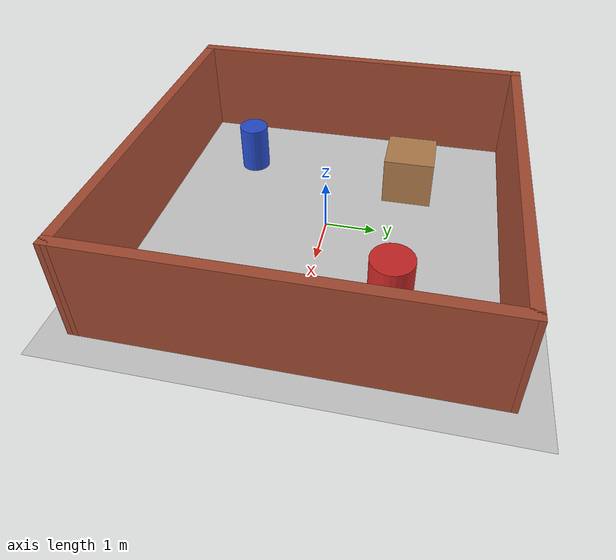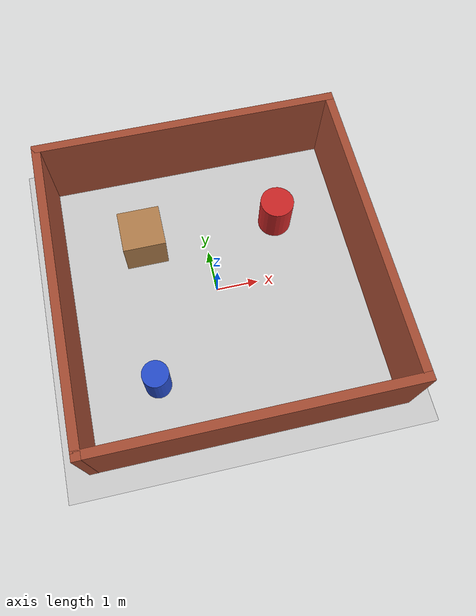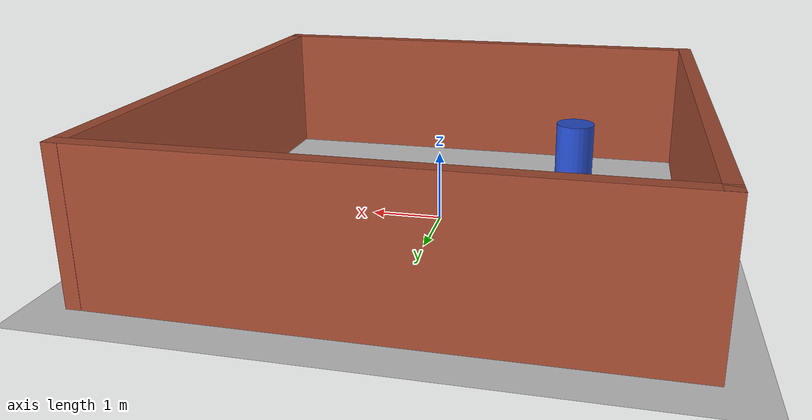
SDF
<?xml version="1.0" ?>
<sdf version="1.5">
  <world name="default">

    <scene>
      <ambient>0.4 0.4 0.4 1.0</ambient>
      <background>0.3 0.3 0.3 1.0</background>
      <shadows>true</shadows>
    </scene>

    <plugin name="gazebo_ros_state" filename="libgazebo_ros_state.so">
      <ros>
        <namespace>/</namespace>
      </ros>
      <update_rate>30.0</update_rate>
    </plugin>

    <light type="directional" name="sun_studio">
      <cast_shadows>true</cast_shadows>
      <pose>0 0 10 0 0 0</pose>
      <diffuse>0.6 0.6 0.6 1</diffuse>
      <specular>0.1 0.1 0.1 1</specular>
      <attenuation>
        <range>1000</range>
        <constant>0.9</constant>
        <linear>0.01</linear>
        <quadratic>0.001</quadratic>
      </attenuation>
      <direction>-0.5 0.5 -1.0</direction>
    </light>

    <model name="ground_plane">
      <static>true</static>
      <link name="link">
        <collision name="collision">
          <geometry><plane><normal>0 0 1</normal><size>50 50</size></plane></geometry>
          <surface>
            <friction>
              <ode><mu>100</mu><mu2>50</mu2></ode>
            </friction>
          </surface>
        </collision>
        <visual name="visual">
          <cast_shadows>false</cast_shadows>
          <geometry><plane><normal>0 0 1</normal><size>50 50</size></plane></geometry>
          <material>
            <script><uri>file://media/materials/scripts/gazebo.material</uri><name>Gazebo/Grey</name></script>
            <ambient>0.8 0.8 0.8 1</ambient>
          </material>
        </visual>
      </link>
    </model>

    <model name="enclosure">
      <static>true</static>
      <link name="link">
        <collision name="c_w1"><pose>3.5 0 1 0 0 0</pose><geometry><box><size>0.2 7.2 2</size></box></geometry></collision>
        <visual name="wall_1"><pose>3.5 0 1 0 0 0</pose><geometry><box><size>0.2 7.2 2</size></box></geometry><material><script><name>Gazebo/Bricks</name></script></material></visual>

        <collision name="c_w2"><pose>-3.5 0 1 0 0 0</pose><geometry><box><size>0.2 7.2 2</size></box></geometry></collision>
        <visual name="wall_2"><pose>-3.5 0 1 0 0 0</pose><geometry><box><size>0.2 7.2 2</size></box></geometry><material><script><name>Gazebo/Bricks</name></script></material></visual>

        <collision name="c_w3"><pose>0 3.5 1 0 0 1.57</pose><geometry><box><size>0.2 7.2 2</size></box></geometry></collision>
        <visual name="wall_3"><pose>0 3.5 1 0 0 1.57</pose><geometry><box><size>0.2 7.2 2</size></box></geometry><material><script><name>Gazebo/Bricks</name></script></material></visual>

        <collision name="c_w4"><pose>0 -3.5 1 0 0 1.57</pose><geometry><box><size>0.2 7.2 2</size></box></geometry></collision>
        <visual name="wall_4"><pose>0 -3.5 1 0 0 1.57</pose><geometry><box><size>0.2 7.2 2</size></box></geometry><material><script><name>Gazebo/Bricks</name></script></material></visual>
      </link>
    </model>

    <model name="obs_cylinder_red">
      <pose>1.8 1.5 0.5 0 0 0</pose>
      <static>true</static>
      <link name="link">
        <collision name="c1"><geometry><cylinder><radius>0.4</radius><length>1</length></cylinder></geometry></collision>
        <visual name="v1"><geometry><cylinder><radius>0.4</radius><length>1</length></cylinder></geometry><material><script><name>Gazebo/Red</name></script></material></visual>
      </link>
    </model>

    <model name="crate_1">
      <pose>-1.5 1.5 0.5 0 0 0</pose>
      <static>true</static>
      <link name="link">
        <collision name="c1"><geometry><box><size>1 1 1</size></box></geometry></collision>
        <visual name="v1"><geometry><box><size>1 1 1</size></box></geometry><material><script><name>Gazebo/WoodPallet</name></script></material></visual>
      </link>
    </model>

    <model name="obs_cylinder_blue">
      <pose>-1.8 -2.0 0.5 0 0 0</pose>
      <static>true</static>
      <link name="link">
        <collision name="c1"><geometry><cylinder><radius>0.3</radius><length>1</length></cylinder></geometry></collision>
        <visual name="v1"><geometry><cylinder><radius>0.3</radius><length>1</length></cylinder></geometry><material><script><name>Gazebo/Blue</name></script></material></visual>
      </link>
    </model>

  </world>
</sdf>
